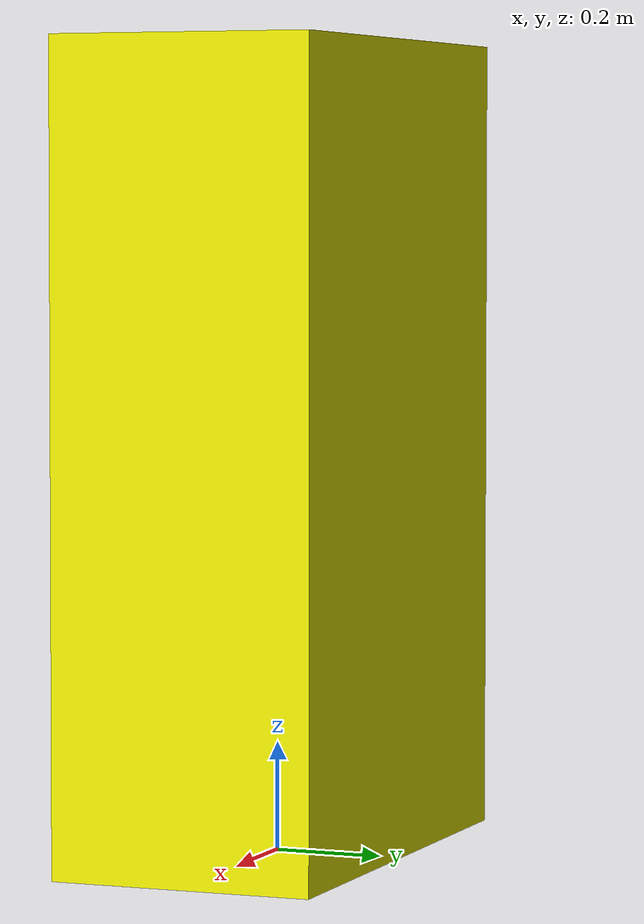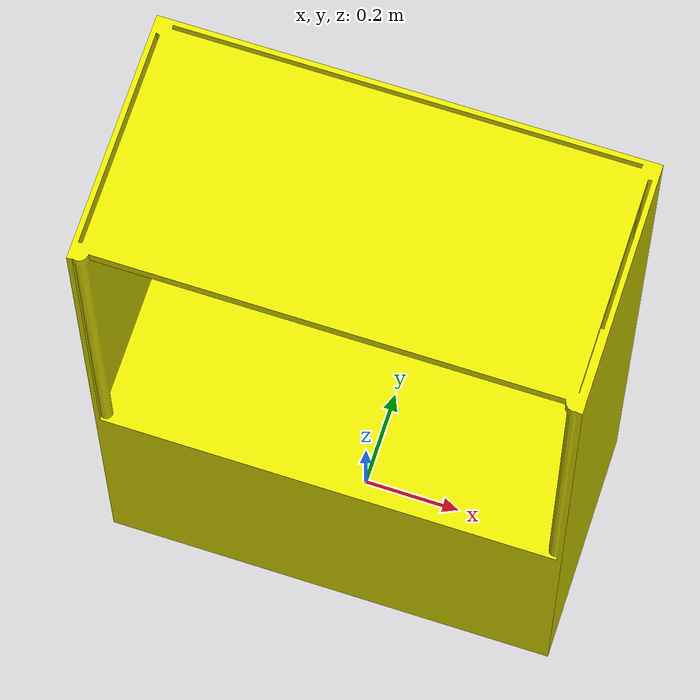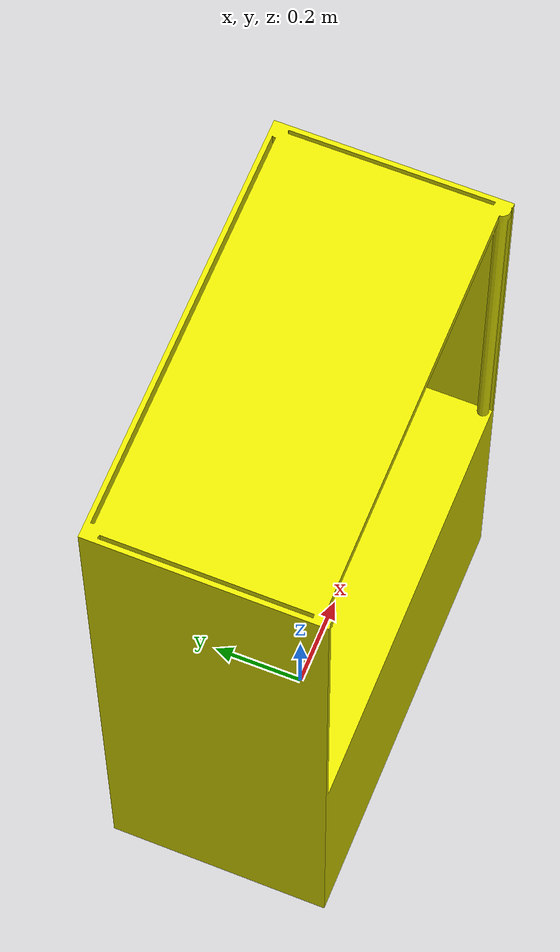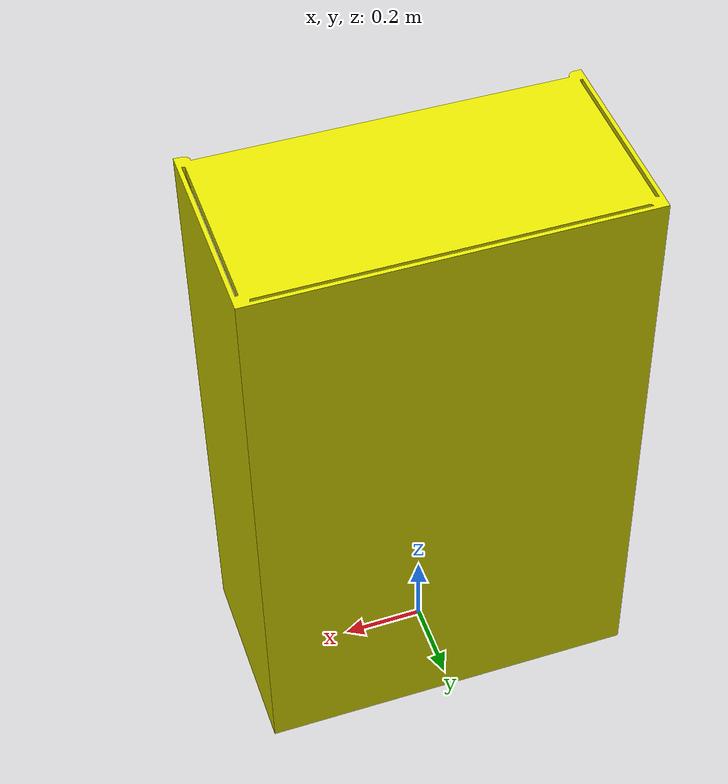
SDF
<?xml version='1.0'?>
<sdf version='1.7'>
  <model name='2F_cabinet1'>
    <link name='link_0'>
      <inertial>
        <mass>1</mass>
        <inertia>
          <ixx>0.166667</ixx>
          <ixy>0</ixy>
          <ixz>0</ixz>
          <iyy>0.166667</iyy>
          <iyz>0</iyz>
          <izz>0.166667</izz>
        </inertia>
        <pose>0 0 0 0 -0 0</pose>
      </inertial>
      <pose>0 0 0 0 -0 3.14159</pose>
      <gravity>0</gravity>
      <self_collide>0</self_collide>
      <kinematic>0</kinematic>
      <enable_wind>0</enable_wind>
      <visual name='visual'>
        <pose>0 0 0 0 -0 0</pose>
        <geometry>
          <mesh>
            <uri>/home/kevin/project/robot_simulation/src/dt_module/resource/2F_cabinet1/2F_cabinet1.STL</uri>
            <scale>1 1 1</scale>
          </mesh>
        </geometry>
        <material>
          <lighting>1</lighting>
          <script>
            <uri>file://media/materials/scripts/gazebo.material</uri>
            <name>Gazebo/Grey</name>
          </script>
          <shader type='pixel'>
            <normal_map>__default__</normal_map>
          </shader>
          <ambient>0.886 0.886 0 1</ambient>
          <diffuse>0.7 0.7 0.7 1</diffuse>
          <specular>0.01 0.01 0.01 1</specular>
          <emissive>0 0 0 1</emissive>
        </material>
        <transparency>0</transparency>
        <cast_shadows>1</cast_shadows>
      </visual>
    </link>
    <static>0</static>
    <allow_auto_disable>1</allow_auto_disable>
  </model>
</sdf>
